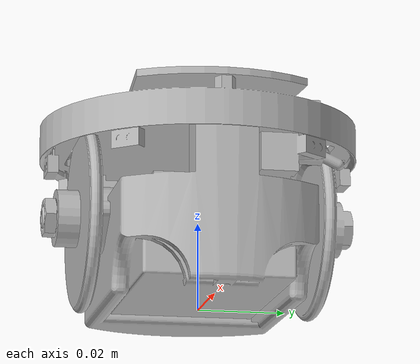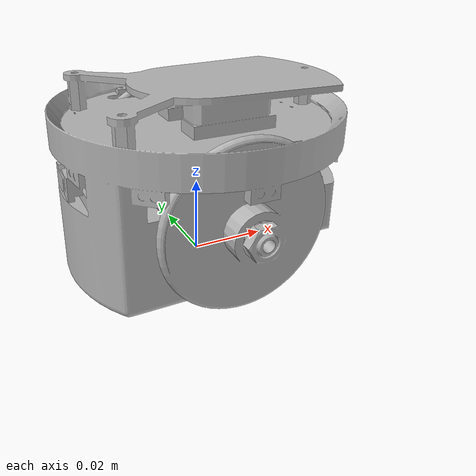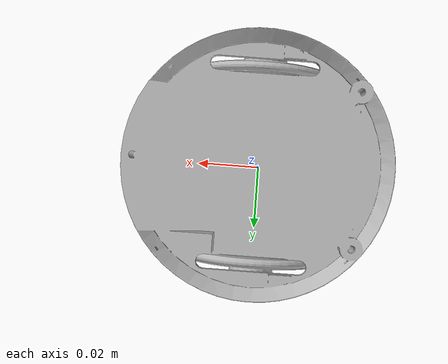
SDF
<sdf version='1.7'>
  <model name='epuck2'>
    <link name='base_link'>
      <inertial>
        <pose>0.000417 9e-05 0.019845 0 -0 0</pose>
        <mass>0.063515</mass>
        <inertia>
          <ixx>2.4227e-05</ixx>
          <ixy>2.691e-07</ixy>
          <ixz>1.2861e-06</ixz>
          <iyy>3.2227e-05</iyy>
          <iyz>4.7122e-08</iyz>
          <izz>3.3868e-05</izz>
        </inertia>
      </inertial>
      <collision name='base_link_fixed_joint_lump__main_body_collision'>
        <pose>0 0 0 0 -0 1.5708</pose>
        <geometry>
          <mesh>
            <scale>1 1 1</scale>
            <uri>model://e_puck/meshes/main_body.STL</uri>
          </mesh>
        </geometry>
      </collision>
      <visual name='base_link_fixed_joint_lump__main_body_visual'>
        <pose>0 0 0 0 -0 1.5708</pose>
        <geometry>
          <mesh>
            <scale>1 1 1</scale>
            <uri>model://e_puck/meshes/main_body.STL</uri>
          </mesh>
        </geometry>
      </visual>
      <sensor name='proximity_0_sensor' type='ray'>
        <visualize>1</visualize>
        <update_rate>10</update_rate>
        <always_on>1</always_on>
        <ray>
          <scan>
            <horizontal>
              <samples>1</samples>
              <resolution>1</resolution>
              <min_angle>-0</min_angle>
              <max_angle>-0</max_angle>
            </horizontal>
            <vertical>
              <samples>1</samples>
              <resolution>1</resolution>
              <min_angle>-0</min_angle>
              <max_angle>-0</max_angle>
            </vertical>
          </scan>
          <range>
            <min>0</min>
            <max>1</max>
            <resolution>0.005</resolution>
          </range>
          <noise>
            <type>gaussian</type>
            <mean>0</mean>
            <stddev>0.0025</stddev>
          </noise>
        </ray>
        <plugin name='proximity_0_controller' filename='libgazebo_ros_ray_sensor.so'>
          <radiation_type>infrared</radiation_type>
          <ros>
            <namespace>my_namespace</namespace>
            <argument>~/out:=proximity_0</argument>
          </ros>
          <output_type>sensor_msgs/Range</output_type>
        </plugin>
        <pose>0.04 -0.011 0.035 0 0 -0.261799</pose>
        <frame name='proximity_0_link'/>
      </sensor>
      <sensor name='proximity_1_sensor' type='ray'>
        <visualize>1</visualize>
        <update_rate>10</update_rate>
        <always_on>1</always_on>
        <ray>
          <scan>
            <horizontal>
              <samples>1</samples>
              <resolution>1</resolution>
              <min_angle>-0</min_angle>
              <max_angle>-0</max_angle>
            </horizontal>
            <vertical>
              <samples>1</samples>
              <resolution>1</resolution>
              <min_angle>-0</min_angle>
              <max_angle>-0</max_angle>
            </vertical>
          </scan>
          <range>
            <min>0</min>
            <max>1</max>
            <resolution>0.005</resolution>
          </range>
          <noise>
            <type>gaussian</type>
            <mean>0</mean>
            <stddev>0.0025</stddev>
          </noise>
        </ray>
        <plugin name='proximity_1_controller' filename='libgazebo_ros_ray_sensor.so'>
          <radiation_type>infrared</radiation_type>
          <ros>
            <namespace>my_namespace</namespace>
            <argument>~/out:=proximity_1</argument>
          </ros>
          <output_type>sensor_msgs/Range</output_type>
        </plugin>
        <pose>0.026 -0.026 0.035 0 0 -0.785398</pose>
        <frame name='proximity_1_link'/>
      </sensor>
      <sensor name='proximity_2_sensor' type='ray'>
        <visualize>1</visualize>
        <update_rate>10</update_rate>
        <always_on>1</always_on>
        <ray>
          <scan>
            <horizontal>
              <samples>1</samples>
              <resolution>1</resolution>
              <min_angle>-0</min_angle>
              <max_angle>-0</max_angle>
            </horizontal>
            <vertical>
              <samples>1</samples>
              <resolution>1</resolution>
              <min_angle>-0</min_angle>
              <max_angle>-0</max_angle>
            </vertical>
          </scan>
          <range>
            <min>0</min>
            <max>1</max>
            <resolution>0.005</resolution>
          </range>
          <noise>
            <type>gaussian</type>
            <mean>0</mean>
            <stddev>0.0025</stddev>
          </noise>
        </ray>
        <plugin name='proximity_2_controller' filename='libgazebo_ros_ray_sensor.so'>
          <radiation_type>infrared</radiation_type>
          <ros>
            <namespace>my_namespace</namespace>
            <argument>~/out:=proximity_2</argument>
          </ros>
          <output_type>sensor_msgs/Range</output_type>
        </plugin>
        <pose>0.001 -0.037 0.035 0 0 -1.5708</pose>
        <frame name='proximity_2_link'/>
      </sensor>
      <sensor name='proximity_3_sensor' type='ray'>
        <visualize>1</visualize>
        <update_rate>10</update_rate>
        <always_on>1</always_on>
        <ray>
          <scan>
            <horizontal>
              <samples>1</samples>
              <resolution>1</resolution>
              <min_angle>-0</min_angle>
              <max_angle>-0</max_angle>
            </horizontal>
            <vertical>
              <samples>1</samples>
              <resolution>1</resolution>
              <min_angle>-0</min_angle>
              <max_angle>-0</max_angle>
            </vertical>
          </scan>
          <range>
            <min>0</min>
            <max>1</max>
            <resolution>0.005</resolution>
          </range>
          <noise>
            <type>gaussian</type>
            <mean>0</mean>
            <stddev>0.0025</stddev>
          </noise>
        </ray>
        <plugin name='proximity_3_controller' filename='libgazebo_ros_ray_sensor.so'>
          <radiation_type>infrared</radiation_type>
          <ros>
            <namespace>my_namespace</namespace>
            <argument>~/out:=proximity_3</argument>
          </ros>
          <output_type>sensor_msgs/Range</output_type>
        </plugin>
        <pose>-0.032 -0.019 0.035 0 0 -2.61799</pose>
        <frame name='proximity_3_link'/>
      </sensor>
      <sensor name='proximity_4_sensor' type='ray'>
        <visualize>1</visualize>
        <update_rate>10</update_rate>
        <always_on>1</always_on>
        <ray>
          <scan>
            <horizontal>
              <samples>1</samples>
              <resolution>1</resolution>
              <min_angle>-0</min_angle>
              <max_angle>-0</max_angle>
            </horizontal>
            <vertical>
              <samples>1</samples>
              <resolution>1</resolution>
              <min_angle>-0</min_angle>
              <max_angle>-0</max_angle>
            </vertical>
          </scan>
          <range>
            <min>0</min>
            <max>1</max>
            <resolution>0.005</resolution>
          </range>
          <noise>
            <type>gaussian</type>
            <mean>0</mean>
            <stddev>0.0025</stddev>
          </noise>
        </ray>
        <plugin name='proximity_4_controller' filename='libgazebo_ros_ray_sensor.so'>
          <radiation_type>infrared</radiation_type>
          <ros>
            <namespace>my_namespace</namespace>
            <argument>~/out:=proximity_4</argument>
          </ros>
          <output_type>sensor_msgs/Range</output_type>
        </plugin>
        <pose>-0.032 0.019 0.035 0 -0 2.61799</pose>
        <frame name='proximity_4_link'/>
      </sensor>
      <sensor name='proximity_5_sensor' type='ray'>
        <visualize>1</visualize>
        <update_rate>10</update_rate>
        <always_on>1</always_on>
        <ray>
          <scan>
            <horizontal>
              <samples>1</samples>
              <resolution>1</resolution>
              <min_angle>-0</min_angle>
              <max_angle>-0</max_angle>
            </horizontal>
            <vertical>
              <samples>1</samples>
              <resolution>1</resolution>
              <min_angle>-0</min_angle>
              <max_angle>-0</max_angle>
            </vertical>
          </scan>
          <range>
            <min>0</min>
            <max>1</max>
            <resolution>0.005</resolution>
          </range>
          <noise>
            <type>gaussian</type>
            <mean>0</mean>
            <stddev>0.0025</stddev>
          </noise>
        </ray>
        <plugin name='proximity_5_controller' filename='libgazebo_ros_ray_sensor.so'>
          <radiation_type>infrared</radiation_type>
          <ros>
            <namespace>my_namespace</namespace>
            <argument>~/out:=proximity_5</argument>
          </ros>
          <output_type>sensor_msgs/Range</output_type>
        </plugin>
        <pose>0.001 0.037 0.035 0 -0 1.5708</pose>
        <frame name='proximity_5_link'/>
      </sensor>
      <sensor name='proximity_6_sensor' type='ray'>
        <visualize>1</visualize>
        <update_rate>10</update_rate>
        <always_on>1</always_on>
        <ray>
          <scan>
            <horizontal>
              <samples>1</samples>
              <resolution>1</resolution>
              <min_angle>-0</min_angle>
              <max_angle>-0</max_angle>
            </horizontal>
            <vertical>
              <samples>1</samples>
              <resolution>1</resolution>
              <min_angle>-0</min_angle>
              <max_angle>-0</max_angle>
            </vertical>
          </scan>
          <range>
            <min>0</min>
            <max>1</max>
            <resolution>0.005</resolution>
          </range>
          <noise>
            <type>gaussian</type>
            <mean>0</mean>
            <stddev>0.0025</stddev>
          </noise>
        </ray>
        <plugin name='proximity_6_controller' filename='libgazebo_ros_ray_sensor.so'>
          <radiation_type>infrared</radiation_type>
          <ros>
            <namespace>my_namespace</namespace>
            <argument>~/out:=proximity_6</argument>
          </ros>
          <output_type>sensor_msgs/Range</output_type>
        </plugin>
        <pose>0.026 0.026 0.035 0 -0 0.785398</pose>
        <frame name='proximity_6_link'/>
      </sensor>
      <sensor name='proximity_7_sensor' type='ray'>
        <visualize>1</visualize>
        <update_rate>10</update_rate>
        <always_on>1</always_on>
        <ray>
          <scan>
            <horizontal>
              <samples>1</samples>
              <resolution>1</resolution>
              <min_angle>-0</min_angle>
              <max_angle>-0</max_angle>
            </horizontal>
            <vertical>
              <samples>1</samples>
              <resolution>1</resolution>
              <min_angle>-0</min_angle>
              <max_angle>-0</max_angle>
            </vertical>
          </scan>
          <range>
            <min>0</min>
            <max>1</max>
            <resolution>0.005</resolution>
          </range>
          <noise>
            <type>gaussian</type>
            <mean>0</mean>
            <stddev>0.0025</stddev>
          </noise>
        </ray>
        <plugin name='proximity_7_controller' filename='libgazebo_ros_ray_sensor.so'>
          <radiation_type>infrared</radiation_type>
          <ros>
            <namespace>my_namespace</namespace>
            <argument>~/out:=proximity_7</argument>
          </ros>
          <output_type>sensor_msgs/Range</output_type>
        </plugin>
        <pose>0.04 0.011 0.035 0 -0 0.261799</pose>
        <frame name='proximity_7_link'/>
      </sensor>
    </link>
    <joint name='left_joint' type='revolute'>
      <pose relative_to='base_link'>-0 0.0278 0.02 0 -0 1.5708</pose>
      <parent>base_link</parent>
      <child>left_wheel</child>
      <axis>
        <xyz>1 0 0</xyz>
        <limit>
          <effort>0.001</effort>
          <velocity>10</velocity>
          <lower>-1e+16</lower>
          <upper>1e+16</upper>
        </limit>
        <dynamics>
          <spring_reference>0</spring_reference>
          <spring_stiffness>0</spring_stiffness>
        </dynamics>
      </axis>
    </joint>
    <link name='left_wheel'>
      <pose relative_to='left_joint'>0 0 0 0 -0 0</pose>
      <inertial>
        <pose>-0.000487 -0 0 0 -0 0</pose>
        <mass>0.0040981</mass>
        <inertia>
          <ixx>8.267e-07</ixx>
          <ixy>-9.8761e-23</ixy>
          <ixz>-8.6429e-13</ixz>
          <iyy>4.304e-07</iyy>
          <iyz>-2.3376e-22</iyz>
          <izz>4.304e-07</izz>
        </inertia>
      </inertial>
      <collision name='left_wheel_collision'>
        <pose>0 0 0 0 -0 0</pose>
        <geometry>
          <mesh>
            <scale>1 1 1</scale>
            <uri>model://e_puck/meshes/left_wheel.STL</uri>
          </mesh>
        </geometry>
        <surface>
          <contact>
            <ode/>
          </contact>
          <friction>
            <ode>
              <mu>10</mu>
              <mu2>10</mu2>
            </ode>
          </friction>
        </surface>
      </collision>
      <visual name='left_wheel_visual'>
        <pose>0 0 0 0 -0 0</pose>
        <geometry>
          <mesh>
            <scale>1 1 1</scale>
            <uri>model://e_puck/meshes/left_wheel.STL</uri>
          </mesh>
        </geometry>
      </visual>
      <self_collide>1</self_collide>
    </link>
    <joint name='right_joint' type='revolute'>
      <pose relative_to='base_link'>0 -0.0278 0.02 0 -0 1.5708</pose>
      <parent>base_link</parent>
      <child>right_wheel</child>
      <axis>
        <xyz>1 0 0</xyz>
        <limit>
          <effort>0.001</effort>
          <velocity>10</velocity>
          <lower>-1e+16</lower>
          <upper>1e+16</upper>
        </limit>
        <dynamics>
          <spring_reference>0</spring_reference>
          <spring_stiffness>0</spring_stiffness>
        </dynamics>
      </axis>
    </joint>
    <link name='right_wheel'>
      <pose relative_to='right_joint'>0 0 0 0 -0 0</pose>
      <inertial>
        <pose>0.000651 0 0 0 -0 0</pose>
        <mass>0.0038059</mass>
        <inertia>
          <ixx>8.2274e-07</ixx>
          <ixy>-1.0753e-22</ixy>
          <ixz>8.6429e-13</ixz>
          <iyy>4.2585e-07</iyy>
          <iyz>2.3307e-22</iyz>
          <izz>4.2585e-07</izz>
        </inertia>
      </inertial>
      <collision name='right_wheel_collision'>
        <pose>0 0 0 0 -0 0</pose>
        <geometry>
          <mesh>
            <scale>1 1 1</scale>
            <uri>model://e_puck/meshes/right_wheel.STL</uri>
          </mesh>
        </geometry>
        <surface>
          <contact>
            <ode/>
          </contact>
          <friction>
            <ode>
              <mu>10</mu>
              <mu2>10</mu2>
            </ode>
          </friction>
        </surface>
      </collision>
      <visual name='right_wheel_visual'>
        <pose>0 0 0 0 -0 0</pose>
        <geometry>
          <mesh>
            <scale>1 1 1</scale>
            <uri>model://e_puck/meshes/right_wheel.STL</uri>
          </mesh>
        </geometry>
      </visual>
      <self_collide>1</self_collide>
    </link>
    <static>0</static>
    <plugin name='differential_drive_controller' filename='libgazebo_ros_diff_drive.so'>
      <alwaysOn>1</alwaysOn>
      <legacyMode>0</legacyMode>
      <updateRate>20</updateRate>
      <left_joint>left_joint</left_joint>
      <right_joint>right_joint</right_joint>
      <wheel_separation>0.05398</wheel_separation>
      <wheel_diameter>0.040</wheel_diameter>
      <torque>2</torque>
      <odometryFrame>odom</odometryFrame>
      <publishWheelTF>1</publishWheelTF>
      <wheelAcceleration>0</wheelAcceleration>
      <wheelTorque>0.0020</wheelTorque>
      <publishTf>1</publishTf>
      <odometrySource>1</odometrySource>
      <publishWheelJointState>1</publishWheelJointState>
      <robotMainFrame>footprint</robotMainFrame>
      <robotBaseFrame>base_link</robotBaseFrame>
      <namespace>my_namespace</namespace>
    </plugin>
    <plugin name='joint_states' filename='libgazebo_ros_joint_state_publisher.so'>
      <joint_name>right_joint</joint_name>
      <joint_name>left_joint</joint_name>
      <update_rate>20.0</update_rate>
      <namespace>my_namespace</namespace>
    </plugin>
  </model>
</sdf>
